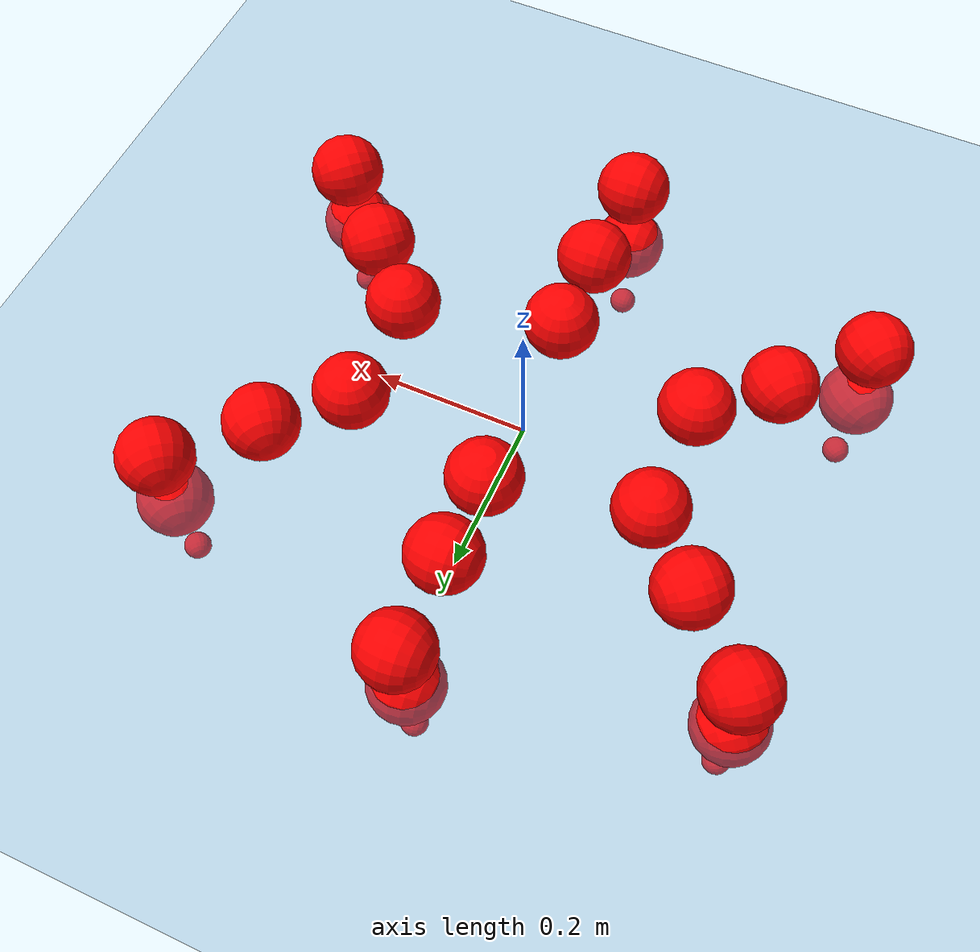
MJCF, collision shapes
<mujoco model="Golem">
  <compiler angle="radian" assetdir="assets" balanceinertia="true" inertiafromgeom="false"/>

  <option timestep="0.005" density="1.2" viscosity="2e-05"/>

  <size nkey="1"/>

  <visual>
    <quality shadowsize="8192"/>
    <map shadowclip="0.5"/>
  </visual>

  <default>
    <default class="/">
      <joint armature="0.01" damping="0.01" frictionloss="0.01"/>
      <geom contype="0" conaffinity="0" group="1" solref="-1000 -80"/>
      <site size="0.01 0.005 0.005" group="5"/>
      <general forcelimited="true" biastype="affine" gainprm="25" biasprm="0 -25 -0.5"/>
      <default class="visual">
        <geom type="mesh" group="2"/>
      </default>
      <default class="collision">
        <geom group="3"/>
      </default>
      <default class="foot">
        <geom size="0.01 0 0" condim="6" group="4" priority="1" solimp="0.015 1 0.01"/>
      </default>
      <default class="reward_collision_sphere">
        <geom group="5" rgba="1 0 0 1"/>
      </default>
    </default>
  </default>

  <asset>
    <texture type="skybox" colorspace="auto" name="//unnamed_texture_0" builtin="gradient" rgb1="0.95 0.95 0.95" rgb2="0.95 0.95 0.95" width="100" height="600"/>
    <texture type="2d" colorspace="auto" name="texplane" builtin="checker" rgb1="0.345 0.575 0.748" rgb2="0.345 0.575 0.748" markrgb="1 1 1" width="512" height="512"/>
    <material name="MatPlane" class="/" texture="texplane" texuniform="true" texrepeat="2 2" specular="0.9"/>
    <mesh name="body" class="/" file="body.stl" scale="0.001 0.001 0.001"/>
    <mesh name="coxa" class="/" file="coxa.stl" scale="0.001 0.001 0.001"/>
    <mesh name="femur" class="/" file="femur.stl" scale="0.001 0.001 0.001"/>
    <mesh name="tibia" class="/" file="tibia.stl" scale="0.001 0.001 0.001"/>
    <mesh name="tarsus" class="/" file="tarsus.stl" scale="0.001 0.001 0.001"/>
  </asset>

  <worldbody>
    <geom name="floor" class="/" size="100 100 0.125" type="plane" group="0" material="MatPlane"/>
    <light name="toplight_shadow" class="/" pos="0 0 5" dir="0.0990148 0.0990148 -0.990148" type="directional" ambient="0.04 0.04 0.04" diffuse="0.55 0.55 0.55" specular="0.12 0.12 0.12"/>
    <light name="toplight_fill" class="/" pos="0 0 5" dir="0.0990148 0.0990148 -0.990148" type="directional" castshadow="false" ambient="0.04 0.04 0.04" diffuse="0.3 0.3 0.3" specular="0.08 0.08 0.08"/>
    <body name="trunk" pos="-0.000107782 -0.000282157 -0.00141111" quat="0.999999 0.000846809 0.000517538 0.000596582">
      <inertial pos="-0.00193558 -0.00282983 0.00235022" quat="0.999888 -0.00106092 -0.00265404 -0.0147107" mass="6.14367" diaginertia="0.0273288 0.0240802 0.0202106"/>
      <joint name="//unnamed_joint_0" type="free"/>
      <geom name="//unnamed_geom_1" class="/" pos="0 0 0.0741696" quat="1 0 0 0" type="mesh" rgba="0.9 0.9 0.9 1" mesh="body"/>
      <site name="imu" class="/" pos="0.169439 -0.0121463 0.107626" size="0.0119518"/>
      <camera name="track" class="/" pos="0 -2.38142 0" quat="0.707107 0.707107 0 0" mode="trackcom"/>
      <camera name="ego_camera" class="/" pos="0.160671 0 0.11589" quat="-0.5 -0.5 0.5 0.5"/>
      <body name="coxa_RR" pos="-0.220664 -0.0999697 0.0759628" quat="0.382553 -3.67072e-05 2.65487e-05 -0.923933">
        <inertial pos="-0.00195245 -0.000774442 -0.0018244" quat="0.999997 -0.00240682 7.91042e-06 -0.000691228" mass="0.343573" diaginertia="0.0283628 0.0240481 0.0211251"/>
        <joint name="coxa_joint_RR" class="/" pos="0 0 0" axis="-0.00164813 0.00142343 -0.999998" stiffness="1.17112e-05" range="-3.17635 3.08021" armature="0.0108707" damping="0" frictionloss="0.0113289"/>
        <geom name="//unnamed_geom_2" class="/" type="mesh" rgba="0.2 0.2 0.2 1" mesh="coxa"/>
        <geom name="//unnamed_geom_3" class="reward_collision_sphere" size="0.0478072" pos="-0.037078 0 0"/>
        <body name="femur_RR" pos="0.0736195 -0.0049607 -0.00522678" quat="0.498884 -0.500495 0.500591 0.500028">
          <inertial pos="-0.00230945 -0.00285645 -0.00417016" quat="0.999922 -0.0103754 -0.000592253 0.00690876" mass="0.34175" diaginertia="0.0287269 0.0246966 0.020215"/>
          <joint name="femur_joint_RR" class="/" pos="0 0 0" axis="-0.0115588 0.0100636 -0.999883" range="-3.09032 3.13328" armature="0.0134496" damping="0.0119114" frictionloss="0.00938533"/>
          <geom name="//unnamed_geom_4" class="/" type="mesh" rgba="0.9 0.9 0.9 1" mesh="femur"/>
          <geom name="//unnamed_geom_5" class="reward_collision_sphere" size="0.0478072"/>
          <body name="tibia_RR" pos="0.000409288 -0.13226 0.00461198" quat="-0.000435415 1 6.89051e-05 0.000525008">
            <inertial pos="0.00110409 0.00385241 -0.00208661" quat="0.999969 0.00487485 -0.00615868 -0.000175091" mass="0.346333" diaginertia="0.0288974 0.0236076 0.0207244"/>
            <joint name="tibia_joint_RR" class="/" pos="0 0 0" axis="0.00532874 0.000752575 0.999986" stiffness="0.0084347" range="-3.13976 3.13421" armature="0.0129039" damping="0" frictionloss="0.011615"/>
            <geom name="//unnamed_geom_6" class="/" type="mesh" rgba="0.2 0.2 0.2 1" mesh="tibia"/>
            <geom name="//unnamed_geom_7" class="reward_collision_sphere" size="0.0478072"/>
            <body name="tarsus_RR" pos="0.112305 0.00110491 -0.000139662" quat="1 -0.000335011 -0.000757263 0.000381319">
              <inertial pos="0.0737042 0.00277291 -0.000955183" quat="0.498543 0.504849 0.498367 0.498209" mass="0.343182" diaginertia="0.0282111 0.0234165 0.0217587"/>
              <joint name="tarsus_joint_RR" class="/" pos="0 0 0" axis="0.0156011 0.000774783 0.999878" range="-3.05865 3.04888" armature="0.0125812" damping="0" frictionloss="0.0118852"/>
              <geom name="//unnamed_geom_8" class="/" type="mesh" rgba="0.9 0.9 0.9 1" mesh="tarsus"/>
              <geom name="foot_1" class="foot" size="0.0120638" pos="0.138425 0 0" quat="0 -0.707107 0 0.707107"/>
              <geom name="//unnamed_geom_10" class="reward_collision_sphere" size="0.0478072"/>
              <geom name="//unnamed_geom_11" class="reward_collision_sphere" size="0.0179277" pos="0.132863 0 0"/>
              <site name="foot_1" class="foot" pos="0.138425 0 0" quat="0 -0.707107 0 0.707107" size="0.0119518"/>
            </body>
          </body>
        </body>
      </body>
      <body name="coxa_RM" pos="0.00268894 -0.159015 0.0795145" quat="0.707309 -0.000791226 -0.000214357 -0.706905">
        <inertial pos="0.00131149 -0.000933218 0.000475032" quat="0.999831 0.0044927 -0.00613914 0.0167321" mass="0.344919" diaginertia="0.0292708 0.0239116 0.0206021"/>
        <joint name="coxa_joint_RM" class="/" pos="0 0 0" axis="-0.00405766 -0.0140011 -0.999894" range="-3.18794 3.18427" armature="0.0114627" damping="0.0257813" frictionloss="0.0107977"/>
        <geom name="//unnamed_geom_12" class="/" type="mesh" rgba="0.2 0.2 0.2 1" mesh="coxa"/>
        <geom name="//unnamed_geom_13" class="reward_collision_sphere" size="0.0478072" pos="-0.037078 0 0"/>
        <body name="femur_RM" pos="0.0725767 0.000892011 0.00173241" quat="0.500575 -0.499636 0.499082 0.500705">
          <inertial pos="0.00311457 -0.00118138 0.00431201" quat="0.999963 -0.00229659 0.00136461 0.00819256" mass="0.333552" diaginertia="0.0280934 0.0237656 0.0213178"/>
          <joint name="femur_joint_RM" class="/" pos="0 0 0" axis="-0.00177906 0.00690498 -0.999975" stiffness="0.00668732" range="-3.0878 3.08276" armature="0.013291" damping="0.0278641" frictionloss="0.0133183"/>
          <geom name="//unnamed_geom_14" class="/" type="mesh" rgba="0.9 0.9 0.9 1" mesh="femur"/>
          <geom name="//unnamed_geom_15" class="reward_collision_sphere" size="0.0478072"/>
          <body name="tibia_RM" pos="0.000571751 -0.127449 -0.00428572" quat="0.000415104 1 0.000647867 -4.27969e-05">
            <inertial pos="0.00181254 0.00286444 -0.00129466" quat="0.999999 -0.000930229 0.000627942 0.000354604" mass="0.355864" diaginertia="0.0296502 0.0248957 0.0219984"/>
            <joint name="tibia_joint_RM" class="/" pos="0 0 0" axis="-0.0040024 0.0139542 0.999895" range="-3.0948 3.17584" armature="0.0106042" damping="0.00186698" frictionloss="0.0130534"/>
            <geom name="//unnamed_geom_16" class="/" type="mesh" rgba="0.2 0.2 0.2 1" mesh="tibia"/>
            <geom name="//unnamed_geom_17" class="reward_collision_sphere" size="0.0478072"/>
            <body name="tarsus_RM" pos="0.108881 -0.00454554 0.00291299" quat="0.999999 -0.000663004 -0.000282512 0.000885137">
              <inertial pos="0.0715887 -0.000345017 0.000229611" quat="0.499436 0.502324 0.498005 0.500226" mass="0.35306" diaginertia="0.0299307 0.0246333 0.0225851"/>
              <joint name="tarsus_joint_RM" class="/" pos="0 0 0" axis="-0.00834494 0.00638974 0.999945" range="-3.09932 3.20723" armature="0.0120325" damping="0.00368058" frictionloss="0.0104072"/>
              <geom name="//unnamed_geom_18" class="/" type="mesh" rgba="0.9 0.9 0.9 1" mesh="tarsus"/>
              <geom name="foot_2" class="foot" size="0.0129925" pos="0.138425 0 0" quat="0 -0.707107 0 0.707107"/>
              <geom name="//unnamed_geom_20" class="reward_collision_sphere" size="0.0478072"/>
              <geom name="//unnamed_geom_21" class="reward_collision_sphere" size="0.0179277" pos="0.132863 0 0"/>
              <site name="foot_2" class="foot" pos="0.138425 0 0" quat="0 -0.707107 0 0.707107" size="0.0119518"/>
            </body>
          </body>
        </body>
      </body>
      <body name="coxa_RF" pos="0.223857 -0.0969881 0.0764934" quat="0.923912 0.000489697 -0.000191731 -0.382606">
        <inertial pos="0.00243291 0.00502808 0.00245971" quat="0.999919 -0.0123108 -0.00153152 -0.00284611" mass="0.334568" diaginertia="0.0283051 0.0249816 0.0218282"/>
        <joint name="coxa_joint_RF" class="/" pos="0 0 0" axis="-0.0118854 -0.00557461 -0.999914" range="-3.14243 3.13591" armature="0.0110057" damping="0.0109166" frictionloss="0.0124421"/>
        <geom name="//unnamed_geom_22" class="/" type="mesh" rgba="0.2 0.2 0.2 1" mesh="coxa"/>
        <geom name="//unnamed_geom_23" class="reward_collision_sphere" size="0.0478072" pos="-0.037078 0 0"/>
        <body name="femur_RF" pos="0.0699482 -0.00109977 -0.000963906" quat="0.500072 -0.500043 0.500117 0.499768">
          <inertial pos="0.00243616 -3.71739e-05 -0.00101568" quat="0.999917 0.0102932 -0.00501561 -0.00591001" mass="0.348877" diaginertia="0.028631 0.0255667 0.0211303"/>
          <joint name="femur_joint_RF" class="/" pos="0 0 0" axis="-0.00107356 0.000818097 -0.999999" range="-3.19685 3.18785" armature="0.0114966" damping="0.00796858" frictionloss="0.0122262"/>
          <geom name="//unnamed_geom_24" class="/" type="mesh" rgba="0.9 0.9 0.9 1" mesh="femur"/>
          <geom name="//unnamed_geom_25" class="reward_collision_sphere" size="0.0478072"/>
          <body name="tibia_RF" pos="0.000387904 -0.128512 0.00184091" quat="-0.000213386 1 0.000126285 0.000178527">
            <inertial pos="8.04456e-05 -0.00145874 -0.00032401" quat="0.99983 0.0167689 0.00739319 0.00223961" mass="0.323459" diaginertia="0.0293223 0.0235507 0.0206971"/>
            <joint name="tibia_joint_RF" class="/" pos="0 0 0" axis="-0.00158734 -0.00414107 0.99999" range="-3.14448 3.13512" armature="0.0134349" damping="0.0021563" frictionloss="0.0112245"/>
            <geom name="//unnamed_geom_26" class="/" type="mesh" rgba="0.2 0.2 0.2 1" mesh="tibia"/>
            <geom name="//unnamed_geom_27" class="reward_collision_sphere" size="0.0478072"/>
            <body name="tarsus_RF" pos="0.104475 -0.000191297 0.00507133" quat="1 0.000205411 0.000296075 0.000419775">
              <inertial pos="0.0766056 0.00202068 0.00234404" quat="0.490232 0.503361 0.506833 0.499419" mass="0.352599" diaginertia="0.0282421 0.0240494 0.0210537"/>
              <joint name="tarsus_joint_RF" class="/" pos="0 0 0" axis="0.000531505 -0.00657926 0.999978" range="-3.12616 3.13917" armature="0.0119233" damping="0" frictionloss="0.0104323"/>
              <geom name="//unnamed_geom_28" class="/" type="mesh" rgba="0.9 0.9 0.9 1" mesh="tarsus"/>
              <geom name="foot_3" class="foot" size="0.0128632" pos="0.138425 0 0" quat="0 -0.707107 0 0.707107"/>
              <geom name="//unnamed_geom_30" class="reward_collision_sphere" size="0.0478072"/>
              <geom name="//unnamed_geom_31" class="reward_collision_sphere" size="0.0179277" pos="0.132863 0 0"/>
              <site name="foot_3" class="foot" pos="0.138425 0 0" quat="0 -0.707107 0 0.707107" size="0.0119518"/>
            </body>
          </body>
        </body>
      </body>
      <body name="coxa_LR" pos="-0.219943 0.100612 0.0734937" quat="0.3822 0.000544058 6.14982e-05 0.924079">
        <inertial pos="-0.00187859 -0.00241953 -0.00165484" quat="0.999973 0.00696678 0.00236067 0.000457915" mass="0.340364" diaginertia="0.0294802 0.0243214 0.0223985"/>
        <joint name="coxa_joint_LR" class="/" pos="0 0 0" axis="-0.00553821 0.0155953 -0.999863" stiffness="0.00179683" range="-3.17194 3.18569" armature="0.0106556" damping="0.0352238" frictionloss="0.0138512"/>
        <geom name="//unnamed_geom_32" class="/" type="mesh" rgba="0.2 0.2 0.2 1" mesh="coxa"/>
        <geom name="//unnamed_geom_33" class="reward_collision_sphere" size="0.0478072" pos="-0.037078 0 0"/>
        <body name="femur_LR" pos="0.0721185 5.71135e-05 0.00306901" quat="0.500706 -0.49921 0.499253 0.500829">
          <inertial pos="-0.00228914 -0.00205394 -0.000350872" quat="0.999931 -0.00244042 -0.0106225 0.00441713" mass="0.363902" diaginertia="0.0286881 0.0239347 0.0205823"/>
          <joint name="femur_joint_LR" class="/" pos="0 0 0" axis="-0.00318574 -0.000188579 0.999995" stiffness="0.00987897" range="-3.0574 3.19468" armature="0.0136928" damping="0.0115105" frictionloss="0.011679"/>
          <geom name="//unnamed_geom_34" class="/" type="mesh" rgba="0.9 0.9 0.9 1" mesh="femur"/>
          <geom name="//unnamed_geom_35" class="reward_collision_sphere" size="0.0478072"/>
          <body name="tibia_LR" pos="-0.00353807 -0.127014 -0.000612722" quat="-0.000214822 1 -0.000580327 0.000263821">
            <inertial pos="0.00137357 0.000930893 0.00204018" quat="0.999993 -0.000753589 0.00362748 1.84055e-05" mass="0.337632" diaginertia="0.0297886 0.023473 0.0207802"/>
            <joint name="tibia_joint_LR" class="/" pos="0 0 0" axis="-0.00632815 0.00829748 -0.999946" range="-3.0961 3.17147" armature="0.0105535" damping="0.00391626" frictionloss="0.0114786"/>
            <geom name="//unnamed_geom_36" class="/" type="mesh" rgba="0.2 0.2 0.2 1" mesh="tibia"/>
            <geom name="//unnamed_geom_37" class="reward_collision_sphere" size="0.0478072"/>
            <body name="tarsus_LR" pos="0.104652 0.00304041 -9.93839e-05" quat="0.999999 -0.000279676 -0.000490996 -0.00134385">
              <inertial pos="0.0758228 0.00132496 -0.00288151" quat="0.498237 0.500169 0.501134 0.500455" mass="0.337929" diaginertia="0.0284151 0.0241835 0.0207628"/>
              <joint name="tarsus_joint_LR" class="/" pos="0 0 0" axis="6.63364e-05 -1.47903e-05 -1" stiffness="0.00110472" range="-3.14278 3.1521" armature="0.0131403" damping="0.0373095" frictionloss="0.010606"/>
              <geom name="//unnamed_geom_38" class="/" type="mesh" rgba="0.9 0.9 0.9 1" mesh="tarsus"/>
              <geom name="foot_4" class="foot" size="0.0126032" pos="0.138425 0 0" quat="0.707107 0 -0.707107 0"/>
              <geom name="//unnamed_geom_40" class="reward_collision_sphere" size="0.0478072"/>
              <geom name="//unnamed_geom_41" class="reward_collision_sphere" size="0.0179277" pos="0.132863 0 0"/>
              <site name="foot_4" class="foot" pos="0.138425 0 0" quat="0.707107 0 -0.707107 0" size="0.0119518"/>
            </body>
          </body>
        </body>
      </body>
      <body name="coxa_LM" pos="-0.00261197 0.15522 0.0799633" quat="0.707484 -0.000354187 -4.85921e-05 0.706729">
        <inertial pos="-0.00198187 -0.000600975 0.00277972" quat="0.99993 0.0113094 -0.00220572 -0.00252184" mass="0.350907" diaginertia="0.0278387 0.0245757 0.0207212"/>
        <joint name="coxa_joint_LM" class="/" pos="0 0 0" axis="0.000249425 -0.00414885 -0.999991" range="-3.10228 3.15028" armature="0.0118959" damping="0.00120541" frictionloss="0.0115036"/>
        <geom name="//unnamed_geom_42" class="/" type="mesh" rgba="0.2 0.2 0.2 1" mesh="coxa"/>
        <geom name="//unnamed_geom_43" class="reward_collision_sphere" size="0.0478072" pos="-0.037078 0 0"/>
        <body name="femur_LM" pos="0.0707928 0.000277226 -0.00119063" quat="0.500004 -0.499997 0.500004 0.499995">
          <inertial pos="0.000350872 -0.00067316 -0.00128585" quat="0.999923 0.0056128 0.00986905 0.00506261" mass="0.33147" diaginertia="0.0305465 0.0235615 0.0204312"/>
          <joint name="femur_joint_LM" class="/" pos="0 0 0" axis="0.0113881 -0.0124916 0.999857" stiffness="0.00782115" range="-3.2001 3.10327" armature="0.010195" damping="0.0358873" frictionloss="0.0119528"/>
          <geom name="//unnamed_geom_44" class="/" type="mesh" rgba="0.9 0.9 0.9 1" mesh="femur"/>
          <geom name="//unnamed_geom_45" class="reward_collision_sphere" size="0.0478072"/>
          <body name="tibia_LM" pos="-0.00088899 -0.124627 0.00235531" quat="-0.00101944 0.999999 -5.2991e-05 0.000150374">
            <inertial pos="0.00302249 6.27039e-06 0.000509735" quat="0.999923 0.00524812 -0.0105485 0.00377711" mass="0.356053" diaginertia="0.0293959 0.0243125 0.0214111"/>
            <joint name="tibia_joint_LM" class="/" pos="0 0 0" axis="-0.00208394 -9.33954e-05 -0.999998" range="-3.08716 3.10322" armature="0.0120369" damping="0" frictionloss="0.014859"/>
            <geom name="//unnamed_geom_46" class="/" type="mesh" rgba="0.2 0.2 0.2 1" mesh="tibia"/>
            <geom name="//unnamed_geom_47" class="reward_collision_sphere" size="0.0478072"/>
            <body name="tarsus_LM" pos="0.10583 -0.00207492 -0.00283556" quat="0.999999 0.00129676 -0.000475579 -0.000129166">
              <inertial pos="0.0753044 0.000586325 -0.000518622" quat="0.504378 0.498796 0.502924 0.493836" mass="0.351482" diaginertia="0.0294348 0.0239059 0.0212617"/>
              <joint name="tarsus_joint_LM" class="/" pos="0 0 0" axis="0.00303291 0.0145923 -0.999889" range="-3.1526 3.13756" armature="0.0134723" damping="0" frictionloss="0.0128331"/>
              <geom name="//unnamed_geom_48" class="/" type="mesh" rgba="0.9 0.9 0.9 1" mesh="tarsus"/>
              <geom name="foot_5" class="foot" size="0.00976157" pos="0.138425 0 0" quat="0.707107 0 -0.707107 0"/>
              <geom name="//unnamed_geom_50" class="reward_collision_sphere" size="0.0478072"/>
              <geom name="//unnamed_geom_51" class="reward_collision_sphere" size="0.0179277" pos="0.132863 0 0"/>
              <site name="foot_5" class="foot" pos="0.138425 0 0" quat="0.707107 0 -0.707107 0" size="0.0119518"/>
            </body>
          </body>
        </body>
      </body>
      <body name="coxa_LF" pos="0.221329 0.100552 0.0765564" quat="0.923769 -0.000880669 -0.000332521 0.382949">
        <inertial pos="-0.000300833 0.00406852 0.000179749" quat="0.999937 -0.00897924 -0.00498097 -0.00445694" mass="0.332667" diaginertia="0.0271635 0.0218792 0.0191332"/>
        <joint name="coxa_joint_LF" class="/" pos="0 0 0" axis="-0.00147858 0.00125866 -0.999998" stiffness="0.000429207" range="-3.14724 3.13524" armature="0.0127743" damping="0" frictionloss="0.0127995"/>
        <geom name="//unnamed_geom_52" class="/" type="mesh" rgba="0.2 0.2 0.2 1" mesh="coxa"/>
        <geom name="//unnamed_geom_53" class="reward_collision_sphere" size="0.0478072" pos="-0.037078 0 0"/>
        <body name="femur_LF" pos="0.0760078 0.000196213 -0.00481009" quat="0.500388 -0.499403 0.499636 0.500571">
          <inertial pos="-0.00145581 0.000385948 0.00209269" quat="0.999917 0.0089046 -0.00823081 -0.00439791" mass="0.344227" diaginertia="0.0300343 0.0244062 0.0213209"/>
          <joint name="femur_joint_LF" class="/" pos="0 0 0" axis="-0.0128894 -0.00554084 0.999902" stiffness="0.0281648" range="-3.18871 3.13202" armature="0.0121795" damping="0.0189099" frictionloss="0.0114522"/>
          <geom name="//unnamed_geom_54" class="/" type="mesh" rgba="0.9 0.9 0.9 1" mesh="femur"/>
          <geom name="//unnamed_geom_55" class="reward_collision_sphere" size="0.0478072"/>
          <body name="tibia_LF" pos="0.00304009 -0.129432 -0.000502061" quat="-2.09731e-05 1 8.9032e-05 -8.63756e-05">
            <inertial pos="-0.00302367 -0.00300646 -0.00445177" quat="0.999926 0.00460764 0.00799177 -0.0079041" mass="0.341119" diaginertia="0.0291898 0.0240803 0.0197795"/>
            <joint name="tibia_joint_LF" class="/" pos="0 0 0" axis="-0.00326072 -0.0093994 -0.999951" range="-3.13808 3.19857" armature="0.0104407" damping="0.00750643" frictionloss="0.0116736"/>
            <geom name="//unnamed_geom_56" class="/" type="mesh" rgba="0.2 0.2 0.2 1" mesh="tibia"/>
            <geom name="//unnamed_geom_57" class="reward_collision_sphere" size="0.0478072"/>
            <body name="tarsus_LF" pos="0.108662 0.000145966 0.00162204" quat="1 0.000178848 -0.000510948 -0.000112176">
              <inertial pos="0.0739616 -0.00185623 -0.00296013" quat="0.499896 0.505625 0.49686 0.497572" mass="0.345012" diaginertia="0.0280314 0.0237111 0.0197719"/>
              <joint name="tarsus_joint_LF" class="/" pos="0 0 0" axis="-0.000629253 -0.00433975 -0.99999" range="-3.1078 3.20514" armature="0.01269" damping="0.029736" frictionloss="0.0126055"/>
              <geom name="//unnamed_geom_58" class="/" type="mesh" rgba="0.9 0.9 0.9 1" mesh="tarsus"/>
              <geom name="foot_6" class="foot" size="0.0120517" pos="0.138425 0 0" quat="0.707107 0 -0.707107 0"/>
              <geom name="//unnamed_geom_60" class="reward_collision_sphere" size="0.0478072"/>
              <geom name="//unnamed_geom_61" class="reward_collision_sphere" size="0.0179277" pos="0.132863 0 0"/>
              <site name="foot_6" class="foot" pos="0.138425 0 0" quat="0.707107 0 -0.707107 0" size="0.0119518"/>
            </body>
          </body>
        </body>
      </body>
    </body>
  </worldbody>

  <contact>
    <pair class="/" geom1="floor" geom2="foot_1" name="//unnamed_contact_0"/>
    <pair class="/" geom1="floor" geom2="foot_2" name="//unnamed_contact_1"/>
    <pair class="/" geom1="floor" geom2="foot_3" name="//unnamed_contact_2"/>
    <pair class="/" geom1="floor" geom2="foot_4" name="//unnamed_contact_3"/>
    <pair class="/" geom1="floor" geom2="foot_5" name="//unnamed_contact_4"/>
    <pair class="/" geom1="floor" geom2="foot_6" name="//unnamed_contact_5"/>
  </contact>

  <actuator>
    <general name="coxa_joint_RR" class="/" joint="coxa_joint_RR" forcerange="-7.88912 7.88912" gainprm="26.4221" biasprm="0 -26.4221 -0.596767"/>
    <general name="femur_joint_RR" class="/" joint="femur_joint_RR" forcerange="-8.50693 8.50693" gainprm="26.4221" biasprm="0 -26.4221 -0.596767"/>
    <general name="tibia_joint_RR" class="/" joint="tibia_joint_RR" forcerange="-8.85344 8.85344" gainprm="26.4221" biasprm="0 -26.4221 -0.596767"/>
    <general name="tarsus_joint_RR" class="/" joint="tarsus_joint_RR" forcerange="-9.15831 9.15831" gainprm="26.4221" biasprm="0 -26.4221 -0.596767"/>
    <general name="coxa_joint_RM" class="/" joint="coxa_joint_RM" forcerange="-8.32494 8.32494" gainprm="26.4221" biasprm="0 -26.4221 -0.596767"/>
    <general name="femur_joint_RM" class="/" joint="femur_joint_RM" forcerange="-8.51019 8.51019" gainprm="26.4221" biasprm="0 -26.4221 -0.596767"/>
    <general name="tibia_joint_RM" class="/" joint="tibia_joint_RM" forcerange="-8.7348 8.7348" gainprm="26.4221" biasprm="0 -26.4221 -0.596767"/>
    <general name="tarsus_joint_RM" class="/" joint="tarsus_joint_RM" forcerange="-8.93015 8.93015" gainprm="26.4221" biasprm="0 -26.4221 -0.596767"/>
    <general name="coxa_joint_RF" class="/" joint="coxa_joint_RF" forcerange="-8.3765 8.3765" gainprm="26.4221" biasprm="0 -26.4221 -0.596767"/>
    <general name="femur_joint_RF" class="/" joint="femur_joint_RF" forcerange="-8.78843 8.78843" gainprm="26.4221" biasprm="0 -26.4221 -0.596767"/>
    <general name="tibia_joint_RF" class="/" joint="tibia_joint_RF" forcerange="-8.84657 8.84657" gainprm="26.4221" biasprm="0 -26.4221 -0.596767"/>
    <general name="tarsus_joint_RF" class="/" joint="tarsus_joint_RF" forcerange="-7.8853 7.8853" gainprm="26.4221" biasprm="0 -26.4221 -0.596767"/>
    <general name="coxa_joint_LR" class="/" joint="coxa_joint_LR" forcerange="-7.95251 7.95251" gainprm="26.4221" biasprm="0 -26.4221 -0.596767"/>
    <general name="femur_joint_LR" class="/" joint="femur_joint_LR" forcerange="-9.29055 9.29055" gainprm="26.4221" biasprm="0 -26.4221 -0.596767"/>
    <general name="tibia_joint_LR" class="/" joint="tibia_joint_LR" forcerange="-9.45967 9.45967" gainprm="26.4221" biasprm="0 -26.4221 -0.596767"/>
    <general name="tarsus_joint_LR" class="/" joint="tarsus_joint_LR" forcerange="-8.85104 8.85104" gainprm="26.4221" biasprm="0 -26.4221 -0.596767"/>
    <general name="coxa_joint_LM" class="/" joint="coxa_joint_LM" forcerange="-8.87949 8.87949" gainprm="26.4221" biasprm="0 -26.4221 -0.596767"/>
    <general name="femur_joint_LM" class="/" joint="femur_joint_LM" forcerange="-8.18751 8.18751" gainprm="26.4221" biasprm="0 -26.4221 -0.596767"/>
    <general name="tibia_joint_LM" class="/" joint="tibia_joint_LM" forcerange="-8.78787 8.78787" gainprm="26.4221" biasprm="0 -26.4221 -0.596767"/>
    <general name="tarsus_joint_LM" class="/" joint="tarsus_joint_LM" forcerange="-9.03276 9.03276" gainprm="26.4221" biasprm="0 -26.4221 -0.596767"/>
    <general name="coxa_joint_LF" class="/" joint="coxa_joint_LF" forcerange="-7.89884 7.89884" gainprm="26.4221" biasprm="0 -26.4221 -0.596767"/>
    <general name="femur_joint_LF" class="/" joint="femur_joint_LF" forcerange="-8.61618 8.61618" gainprm="26.4221" biasprm="0 -26.4221 -0.596767"/>
    <general name="tibia_joint_LF" class="/" joint="tibia_joint_LF" forcerange="-8.64218 8.64218" gainprm="26.4221" biasprm="0 -26.4221 -0.596767"/>
    <general name="tarsus_joint_LF" class="/" joint="tarsus_joint_LF" forcerange="-10.2758 10.2758" gainprm="26.4221" biasprm="0 -26.4221 -0.596767"/>
  </actuator>

  <sensor>
    <gyro site="imu" name="imu_angular_velocity"/>
    <velocimeter site="imu" name="imu_linear_velocity"/>
    <framelinvel objtype="site" objname="foot_1" name="foot_1_global_linear_velocity"/>
    <framelinvel objtype="site" objname="foot_2" name="foot_2_global_linear_velocity"/>
    <framelinvel objtype="site" objname="foot_3" name="foot_3_global_linear_velocity"/>
    <framelinvel objtype="site" objname="foot_4" name="foot_4_global_linear_velocity"/>
    <framelinvel objtype="site" objname="foot_5" name="foot_5_global_linear_velocity"/>
    <framelinvel objtype="site" objname="foot_6" name="foot_6_global_linear_velocity"/>
  </sensor>

  <keyframe>
    <key name="home" qpos="0 0 0.1457 1 0 0 0 0 0 0 0 0 0 0 0 0 0 0 0 0 0 0 0 0 0 0 0 0 0 0 0"/>
  </keyframe>
</mujoco>
